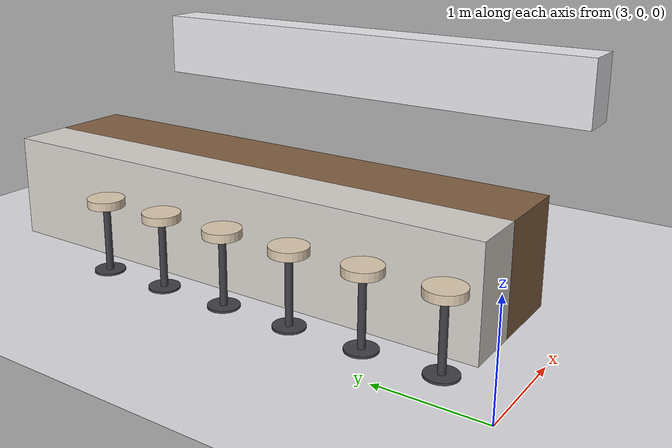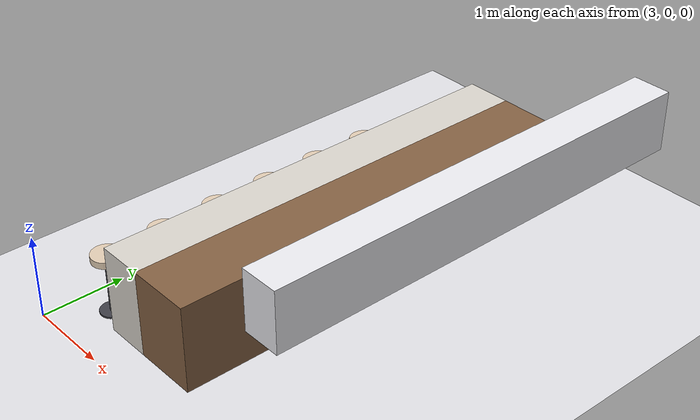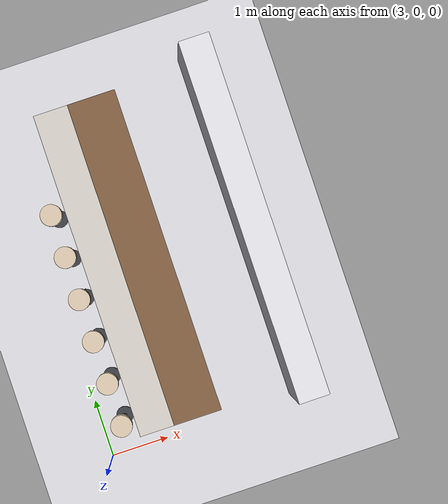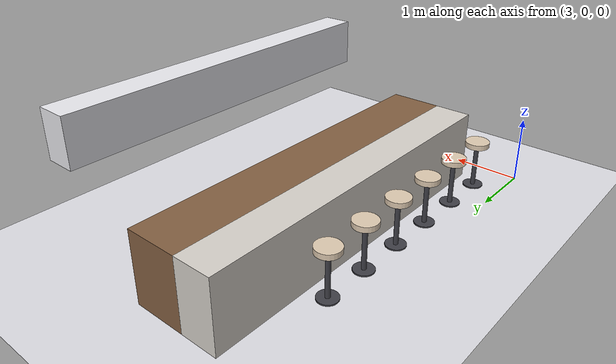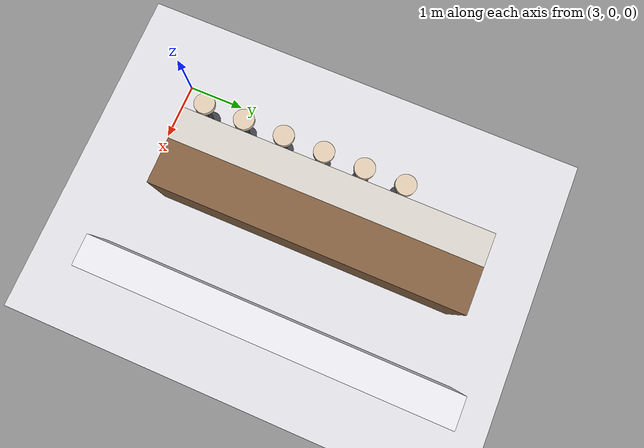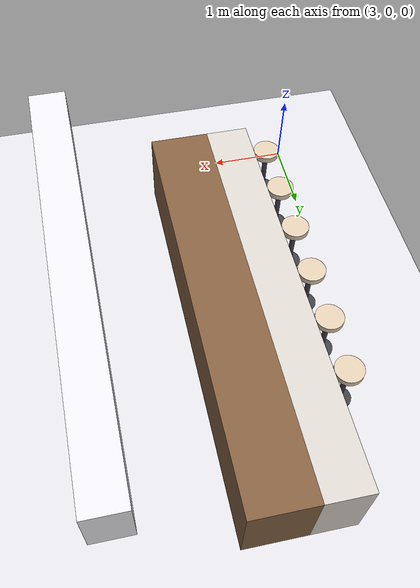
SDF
<sdf version="1.8">
 <world name="restaurant_blueprint_world">
  <model name="ground_plane">
   <static>true</static>
   <link name="link">
    <collision name="collision">
     <geometry><plane><normal>0 0 1</normal><size>120 120</size></plane></geometry>
    </collision>
    <visual name="visual">
     <geometry><plane><normal>0 0 1</normal><size>120 120</size></plane></geometry>
     <material>
      <ambient>0.88 0.88 0.90 1</ambient>
      <diffuse>0.88 0.88 0.90 1</diffuse>
      <specular>0.1 0.1 0.1 1</specular>
     </material>
    </visual>
   </link>
  </model>
  <model name="restaurant_boundary">
   <static>true</static>
   <link name="bar_05_counter">
    <visual name="bar_05_right_layer_vis">
     <pose>4.650 3.075 0.525 0 0 0</pose>
     <geometry><box><size>0.78 5.29 1.05</size></box></geometry>
     <material><ambient>0.36 0.26 0.18 1</ambient><diffuse>0.52 0.38 0.26 1</diffuse></material>
    </visual>
    <collision name="bar_05_right_layer_col">
     <pose>4.650 3.075 0.525 0 0 0</pose>
     <geometry><box><size>0.78 5.29 1.05</size></box></geometry>
    </collision>
    <visual name="bar_05_left_layer_vis">
     <pose>3.980 3.075 0.525 0 0 0</pose>
     <geometry><box><size>0.56 5.29 1.05</size></box></geometry>
     <material><ambient>0.82 0.80 0.78 1</ambient><diffuse>0.85 0.83 0.80 1</diffuse></material>
    </visual>
    <collision name="bar_05_left_layer_col">
     <pose>3.980 3.075 0.525 0 0 0</pose>
     <geometry><box><size>0.56 5.29 1.05</size></box></geometry>
    </collision>
    <visual name="bar_05_wall_cabinet_vis">
     <pose>6.305 3.075 1.750 0 0 0</pose>
     <geometry><box><size>0.45 5.29 0.70</size></box></geometry>
     <material>
      <ambient>0.88 0.88 0.90 1</ambient>
      <diffuse>0.92 0.92 0.94 1</diffuse>
      <specular>0.2 0.2 0.2 1</specular>
     </material>
    </visual>
    <collision name="bar_05_wall_cabinet_col">
     <pose>6.305 3.075 1.750 0 0 0</pose>
     <geometry><box><size>0.45 5.29 0.70</size></box></geometry>
    </collision>
    <visual name="bar_05_stool_1_cushion_vis">
     <pose>3.420 0.610 0.710 0 0 0</pose>
     <geometry><cylinder><radius>0.18</radius><length>0.08</length></cylinder></geometry>
     <material><ambient>0.82 0.75 0.65 1</ambient><diffuse>0.88 0.80 0.70 1</diffuse></material>
    </visual>
    <collision name="bar_05_stool_1_cushion_col">
     <pose>3.420 0.610 0.710 0 0 0</pose>
     <geometry><cylinder><radius>0.18</radius><length>0.08</length></cylinder></geometry>
    </collision>
    <visual name="bar_05_stool_1_stem_vis">
     <pose>3.420 0.610 0.345 0 0 0</pose>
     <geometry><cylinder><radius>0.035</radius><length>0.65</length></cylinder></geometry>
     <material><ambient>0.20 0.20 0.22 1</ambient><diffuse>0.25 0.25 0.28 1</diffuse></material>
    </visual>
    <collision name="bar_05_stool_1_stem_col">
     <pose>3.420 0.610 0.345 0 0 0</pose>
     <geometry><cylinder><radius>0.035</radius><length>0.65</length></cylinder></geometry>
    </collision>
    <visual name="bar_05_stool_1_base_vis">
     <pose>3.420 0.610 0.010 0 0 0</pose>
     <geometry><cylinder><radius>0.15</radius><length>0.02</length></cylinder></geometry>
     <material><ambient>0.20 0.20 0.22 1</ambient><diffuse>0.25 0.25 0.28 1</diffuse></material>
    </visual>
    <collision name="bar_05_stool_1_base_col">
     <pose>3.420 0.610 0.010 0 0 0</pose>
     <geometry><cylinder><radius>0.15</radius><length>0.02</length></cylinder></geometry>
    </collision>
    <visual name="bar_05_stool_2_cushion_vis">
     <pose>3.420 1.330 0.710 0 0 0</pose>
     <geometry><cylinder><radius>0.18</radius><length>0.08</length></cylinder></geometry>
     <material><ambient>0.82 0.75 0.65 1</ambient><diffuse>0.88 0.80 0.70 1</diffuse></material>
    </visual>
    <collision name="bar_05_stool_2_cushion_col">
     <pose>3.420 1.330 0.710 0 0 0</pose>
     <geometry><cylinder><radius>0.18</radius><length>0.08</length></cylinder></geometry>
    </collision>
    <visual name="bar_05_stool_2_stem_vis">
     <pose>3.420 1.330 0.345 0 0 0</pose>
     <geometry><cylinder><radius>0.035</radius><length>0.65</length></cylinder></geometry>
     <material><ambient>0.20 0.20 0.22 1</ambient><diffuse>0.25 0.25 0.28 1</diffuse></material>
    </visual>
    <collision name="bar_05_stool_2_stem_col">
     <pose>3.420 1.330 0.345 0 0 0</pose>
     <geometry><cylinder><radius>0.035</radius><length>0.65</length></cylinder></geometry>
    </collision>
    <visual name="bar_05_stool_2_base_vis">
     <pose>3.420 1.330 0.010 0 0 0</pose>
     <geometry><cylinder><radius>0.15</radius><length>0.02</length></cylinder></geometry>
     <material><ambient>0.20 0.20 0.22 1</ambient><diffuse>0.25 0.25 0.28 1</diffuse></material>
    </visual>
    <collision name="bar_05_stool_2_base_col">
     <pose>3.420 1.330 0.010 0 0 0</pose>
     <geometry><cylinder><radius>0.15</radius><length>0.02</length></cylinder></geometry>
    </collision>
    <visual name="bar_05_stool_3_cushion_vis">
     <pose>3.420 2.050 0.710 0 0 0</pose>
     <geometry><cylinder><radius>0.18</radius><length>0.08</length></cylinder></geometry>
     <material><ambient>0.82 0.75 0.65 1</ambient><diffuse>0.88 0.80 0.70 1</diffuse></material>
    </visual>
    <collision name="bar_05_stool_3_cushion_col">
     <pose>3.420 2.050 0.710 0 0 0</pose>
     <geometry><cylinder><radius>0.18</radius><length>0.08</length></cylinder></geometry>
    </collision>
    <visual name="bar_05_stool_3_stem_vis">
     <pose>3.420 2.050 0.345 0 0 0</pose>
     <geometry><cylinder><radius>0.035</radius><length>0.65</length></cylinder></geometry>
     <material><ambient>0.20 0.20 0.22 1</ambient><diffuse>0.25 0.25 0.28 1</diffuse></material>
    </visual>
    <collision name="bar_05_stool_3_stem_col">
     <pose>3.420 2.050 0.345 0 0 0</pose>
     <geometry><cylinder><radius>0.035</radius><length>0.65</length></cylinder></geometry>
    </collision>
    <visual name="bar_05_stool_3_base_vis">
     <pose>3.420 2.050 0.010 0 0 0</pose>
     <geometry><cylinder><radius>0.15</radius><length>0.02</length></cylinder></geometry>
     <material><ambient>0.20 0.20 0.22 1</ambient><diffuse>0.25 0.25 0.28 1</diffuse></material>
    </visual>
    <collision name="bar_05_stool_3_base_col">
     <pose>3.420 2.050 0.010 0 0 0</pose>
     <geometry><cylinder><radius>0.15</radius><length>0.02</length></cylinder></geometry>
    </collision>
    <visual name="bar_05_stool_4_cushion_vis">
     <pose>3.420 2.770 0.710 0 0 0</pose>
     <geometry><cylinder><radius>0.18</radius><length>0.08</length></cylinder></geometry>
     <material><ambient>0.82 0.75 0.65 1</ambient><diffuse>0.88 0.80 0.70 1</diffuse></material>
    </visual>
    <collision name="bar_05_stool_4_cushion_col">
     <pose>3.420 2.770 0.710 0 0 0</pose>
     <geometry><cylinder><radius>0.18</radius><length>0.08</length></cylinder></geometry>
    </collision>
    <visual name="bar_05_stool_4_stem_vis">
     <pose>3.420 2.770 0.345 0 0 0</pose>
     <geometry><cylinder><radius>0.035</radius><length>0.65</length></cylinder></geometry>
     <material><ambient>0.20 0.20 0.22 1</ambient><diffuse>0.25 0.25 0.28 1</diffuse></material>
    </visual>
    <collision name="bar_05_stool_4_stem_col">
     <pose>3.420 2.770 0.345 0 0 0</pose>
     <geometry><cylinder><radius>0.035</radius><length>0.65</length></cylinder></geometry>
    </collision>
    <visual name="bar_05_stool_4_base_vis">
     <pose>3.420 2.770 0.010 0 0 0</pose>
     <geometry><cylinder><radius>0.15</radius><length>0.02</length></cylinder></geometry>
     <material><ambient>0.20 0.20 0.22 1</ambient><diffuse>0.25 0.25 0.28 1</diffuse></material>
    </visual>
    <collision name="bar_05_stool_4_base_col">
     <pose>3.420 2.770 0.010 0 0 0</pose>
     <geometry><cylinder><radius>0.15</radius><length>0.02</length></cylinder></geometry>
    </collision>
    <visual name="bar_05_stool_5_cushion_vis">
     <pose>3.420 3.490 0.710 0 0 0</pose>
     <geometry><cylinder><radius>0.18</radius><length>0.08</length></cylinder></geometry>
     <material><ambient>0.82 0.75 0.65 1</ambient><diffuse>0.88 0.80 0.70 1</diffuse></material>
    </visual>
    <collision name="bar_05_stool_5_cushion_col">
     <pose>3.420 3.490 0.710 0 0 0</pose>
     <geometry><cylinder><radius>0.18</radius><length>0.08</length></cylinder></geometry>
    </collision>
    <visual name="bar_05_stool_5_stem_vis">
     <pose>3.420 3.490 0.345 0 0 0</pose>
     <geometry><cylinder><radius>0.035</radius><length>0.65</length></cylinder></geometry>
     <material><ambient>0.20 0.20 0.22 1</ambient><diffuse>0.25 0.25 0.28 1</diffuse></material>
    </visual>
    <collision name="bar_05_stool_5_stem_col">
     <pose>3.420 3.490 0.345 0 0 0</pose>
     <geometry><cylinder><radius>0.035</radius><length>0.65</length></cylinder></geometry>
    </collision>
    <visual name="bar_05_stool_5_base_vis">
     <pose>3.420 3.490 0.010 0 0 0</pose>
     <geometry><cylinder><radius>0.15</radius><length>0.02</length></cylinder></geometry>
     <material><ambient>0.20 0.20 0.22 1</ambient><diffuse>0.25 0.25 0.28 1</diffuse></material>
    </visual>
    <collision name="bar_05_stool_5_base_col">
     <pose>3.420 3.490 0.010 0 0 0</pose>
     <geometry><cylinder><radius>0.15</radius><length>0.02</length></cylinder></geometry>
    </collision>
    <visual name="bar_05_stool_6_cushion_vis">
     <pose>3.420 4.210 0.710 0 0 0</pose>
     <geometry><cylinder><radius>0.18</radius><length>0.08</length></cylinder></geometry>
     <material><ambient>0.82 0.75 0.65 1</ambient><diffuse>0.88 0.80 0.70 1</diffuse></material>
    </visual>
    <collision name="bar_05_stool_6_cushion_col">
     <pose>3.420 4.210 0.710 0 0 0</pose>
     <geometry><cylinder><radius>0.18</radius><length>0.08</length></cylinder></geometry>
    </collision>
    <visual name="bar_05_stool_6_stem_vis">
     <pose>3.420 4.210 0.345 0 0 0</pose>
     <geometry><cylinder><radius>0.035</radius><length>0.65</length></cylinder></geometry>
     <material><ambient>0.20 0.20 0.22 1</ambient><diffuse>0.25 0.25 0.28 1</diffuse></material>
    </visual>
    <collision name="bar_05_stool_6_stem_col">
     <pose>3.420 4.210 0.345 0 0 0</pose>
     <geometry><cylinder><radius>0.035</radius><length>0.65</length></cylinder></geometry>
    </collision>
    <visual name="bar_05_stool_6_base_vis">
     <pose>3.420 4.210 0.010 0 0 0</pose>
     <geometry><cylinder><radius>0.15</radius><length>0.02</length></cylinder></geometry>
     <material><ambient>0.20 0.20 0.22 1</ambient><diffuse>0.25 0.25 0.28 1</diffuse></material>
    </visual>
    <collision name="bar_05_stool_6_base_col">
     <pose>3.420 4.210 0.010 0 0 0</pose>
     <geometry><cylinder><radius>0.15</radius><length>0.02</length></cylinder></geometry>
    </collision>
   </link>
  </model>
 </world>
</sdf>
